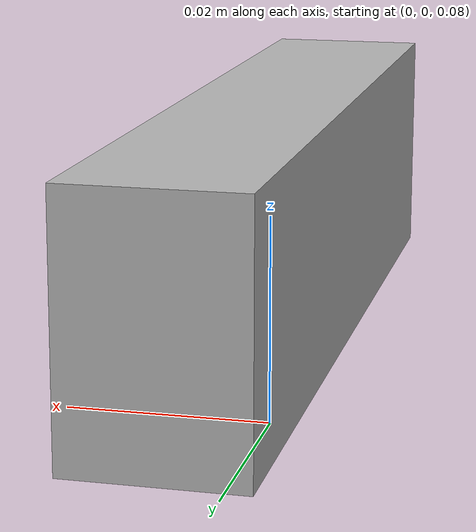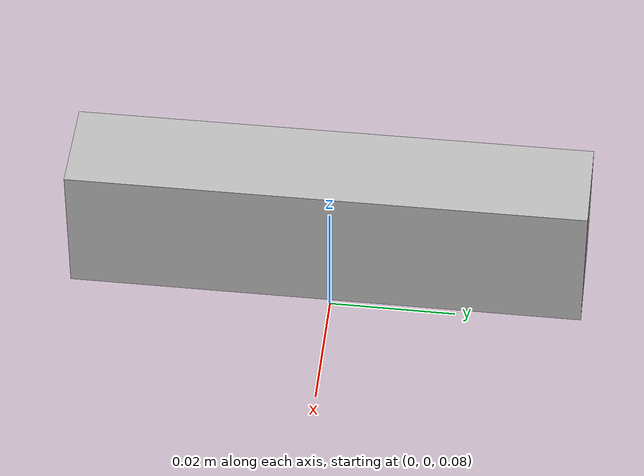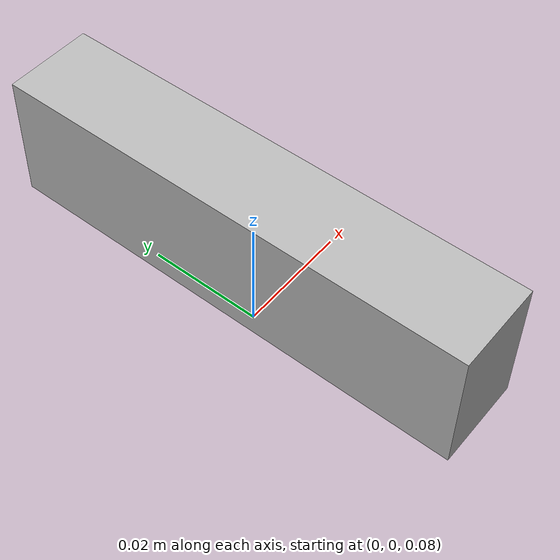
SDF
<?xml version="1.0" ?>
<sdf version="1.5">
  <model name="camera_sensor">
    <link name="link">
      <pose>0 0 0.1 0 1.57 0</pose>
      <inertial>
        <pose>0.01 0.025 0.025 0 0 0</pose>
        <mass>0.01</mass>
        <inertia>
          <ixx>4.15e-6</ixx>
          <ixy>0</ixy>
          <ixz>0</ixz>
          <iyy>2.407e-6</iyy>
          <iyz>0</iyz>
          <izz>2.407e-6</izz>
        </inertia>
      </inertial>
      <visual name="visual">
        <pose>0 0 0 0 1.57 0</pose>
        <geometry>
          <box>
            <size>0.015 0.08 0.022</size>
          </box>
        </geometry>
      </visual>
      <sensor name="camera" type="camera">
        <pose> 0 0 0 0 0 0 </pose>
        <visualize>true</visualize>
        <update_rate>10</update_rate>
        <camera>
            <horizontal_fov>1.089</horizontal_fov>
            <image>
                <format>R8G8B8</format>
                <width>640</width>
                <height>480</height>
            </image>
            <clip>
                <near>0.05</near>
                <far>8.0</far>
            </clip>
        </camera>
        <plugin name="camera_controller" filename="libgazebo_ros_camera.so">
            <frame_name>camera_link_optical</frame_name>
        </plugin>
      </sensor>
    </link>
  </model>
</sdf>
